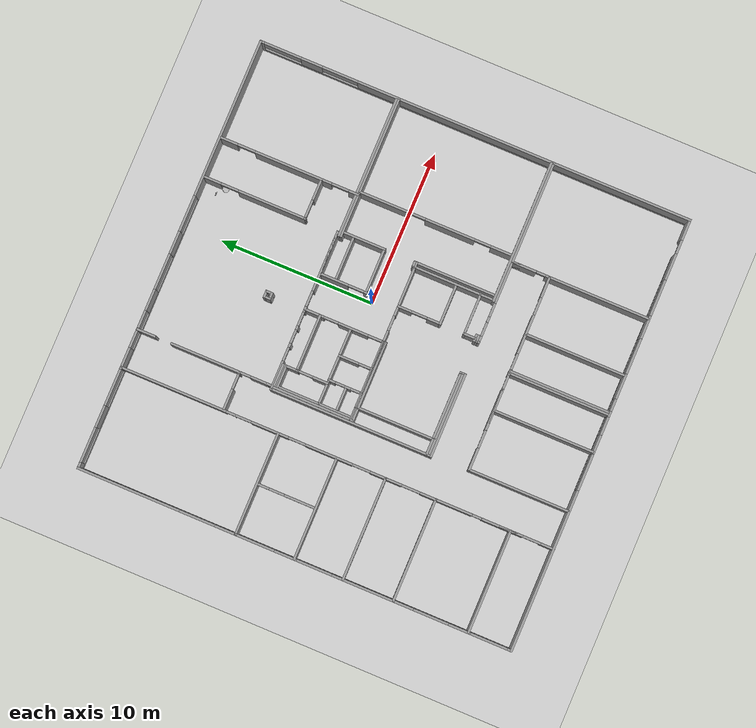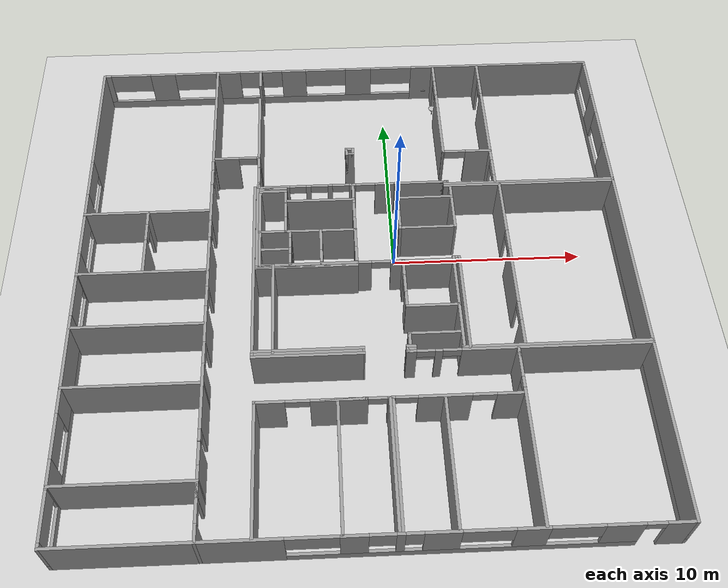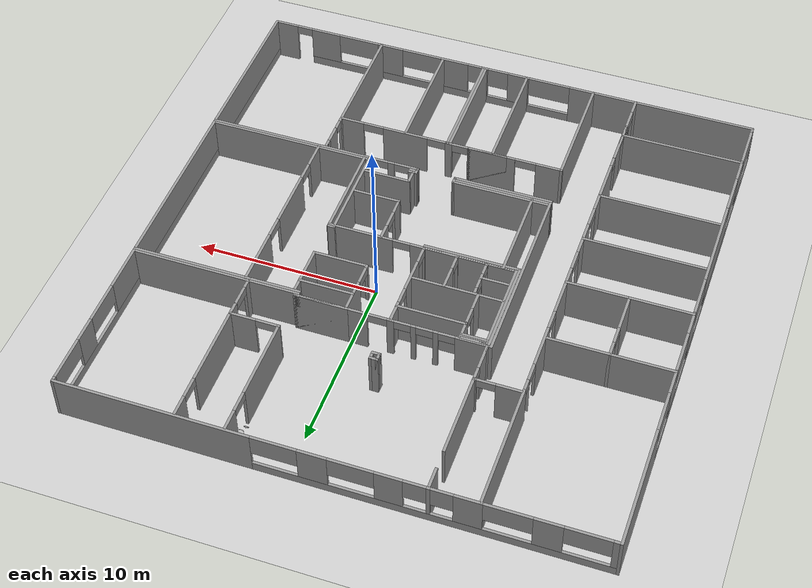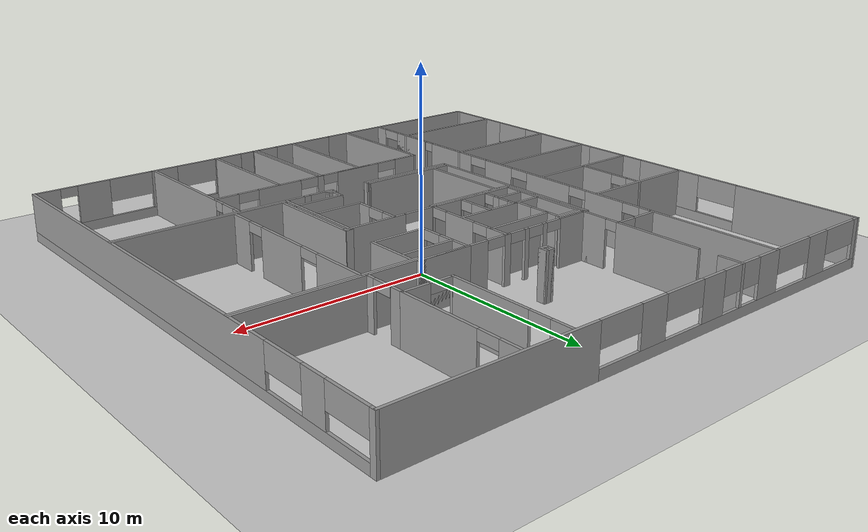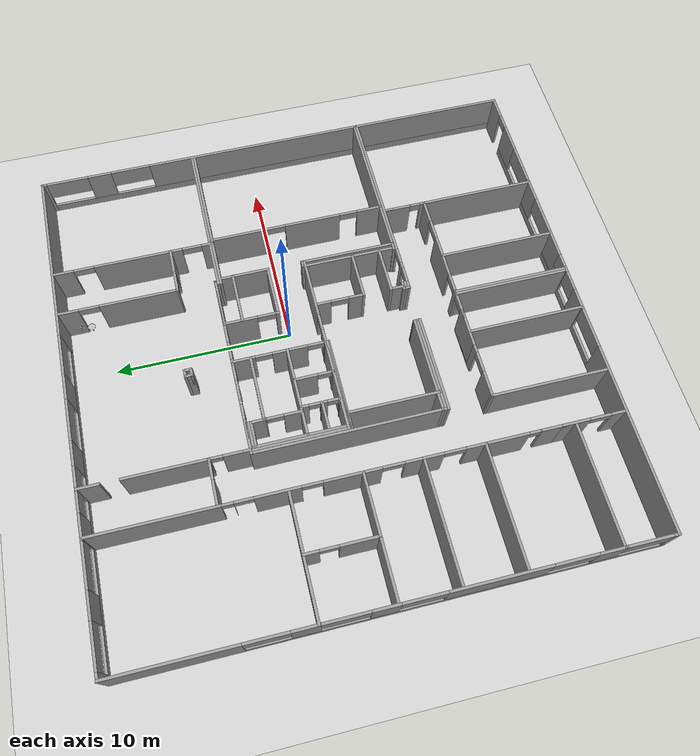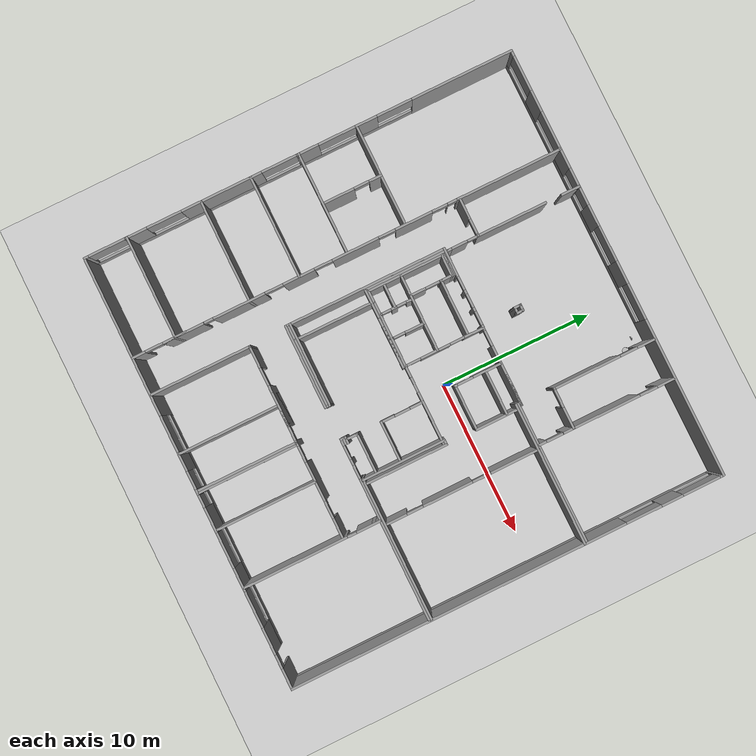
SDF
<sdf version="1.4">
 <world name="default">
  <physics type="ode">
   <max_step_size>0.001000</max_step_size>
   <real_time_update_rate>1000.000000</real_time_update_rate>
   <ode><constraints><cfm>0.0</cfm><erp>0.2</erp></constraints></ode>
  </physics>
  <include><uri>model://ground_plane</uri></include>
  <include><uri>model://sun</uri></include>
  <include><uri>model://basement</uri></include>
  <model name="robot_base">
   <static>true</static>
   <include><uri>model://robot_base</uri><pose>3.0 11.0 -0.3 0 0 0</pose></include>
  </model>
  <model name="kinect">
   <static>true</static>
   <include><uri>model://kinect</uri><pose>2.403980 11.326148 1.58 1.58 1.57079 0</pose></include>
  </model>
 </world>
</sdf>

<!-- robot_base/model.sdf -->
<sdf version="1.7">
  <model name="robot_base">
    <static>true</static>
    <link name="link">
      <pose>0 0 0.73 0 0 0</pose>

      <collision name="surface">
        <pose>0 0 -0.015 0 0 0</pose>
        <geometry>
          <box>
            <size>2.35 1 0.03</size>
          </box>
        </geometry>
      </collision>

      <visual name="visual">
        <geometry>
          <mesh>
            <uri>model://robot_base/meshes/robot_base.dae</uri>
          </mesh>
        </geometry>
      </visual>
    </link>
  </model>
</sdf>

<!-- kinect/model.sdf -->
<sdf version="1.5">
  <model name="kinect">
    <pose>0 0 0.036 0 0 0</pose>
    <link name="link">
      <inertial>
        <mass>0.1</mass>
      </inertial>
      <collision name="collision">
        <geometry>
          <box>
            <size>0.073000 0.276000 0.072000</size>
          </box>
        </geometry>
      </collision>
      <visual name="visual">
        <geometry>
          <mesh>
            <uri>model://kinect/meshes/kinect.dae</uri>
          </mesh>
        </geometry>
      </visual>
      <sensor name="camera" type="depth">
        <update_rate>20</update_rate>
        <camera>
          <horizontal_fov>1.047198</horizontal_fov>
          <image>
            <width>640</width>
            <height>480</height>
            <format>R8G8B8</format>
          </image>
          <clip>
            <near>0.05</near>
            <far>3</far>
          </clip>
        </camera>
        <plugin name="camera_plugin" filename="libgazebo_ros_openni_kinect.so">
          <baseline>0.2</baseline>
          <alwaysOn>true</alwaysOn>
          <updateRate>0.0</updateRate>
          <cameraName>camera_ir</cameraName>
          <imageTopicName>/camera/color/image_raw</imageTopicName>
          <cameraInfoTopicName>/camera/color/camera_info</cameraInfoTopicName>
          <depthImageTopicName>/camera/depth/image_raw</depthImageTopicName>
          <depthImageCameraInfoTopicName>/camera/depth/camera_info</depthImageCameraInfoTopicName>
          <pointCloudTopicName>/camera/depth/points</pointCloudTopicName>
          <frameName>base</frameName>
          <pointCloudCutoff>0.5</pointCloudCutoff>
          <pointCloudCutoffMax>3.0</pointCloudCutoffMax>
          <distortionK1>0</distortionK1>
          <distortionK2>0</distortionK2>
          <distortionK3>0</distortionK3>
          <distortionT1>0</distortionT1>
          <distortionT2>0</distortionT2>
          <CxPrime>0</CxPrime>
          <Cx>0</Cx>
          <Cy>0</Cy>
          <focalLength>0</focalLength>
          <hackBaseline>0</hackBaseline>
        </plugin>
      </sensor>
    </link>
  </model>
</sdf>
